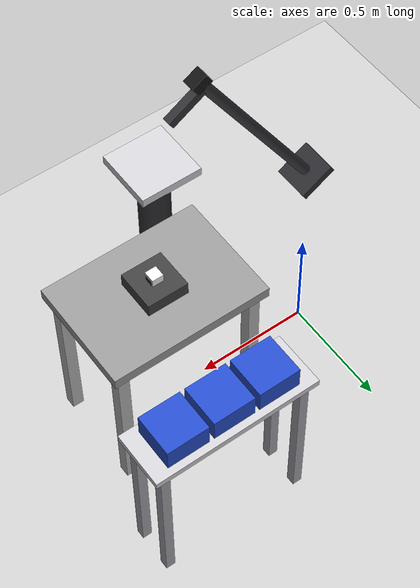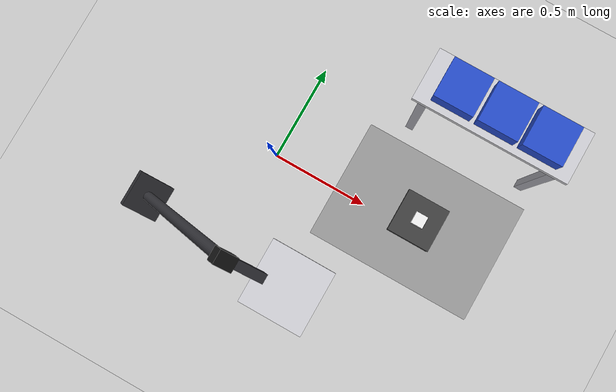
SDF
<?xml version="1.0" ?>
<sdf version="1.7">
  <world name="pick_scan_place">
    <plugin name="gazebo_ros_state" filename="libgazebo_ros_state.so"/>

    <include>
      <uri>model://ground_plane</uri>
    </include>
    <include>
      <uri>model://sun</uri>
    </include>

    <gravity>0 0 -9.81</gravity>

    <light name="cell_fill_light" type="point">
      <pose>0.45 0.0 2.0 0 0 0</pose>
      <diffuse>1 1 1 1</diffuse>
      <specular>0.2 0.2 0.2 1</specular>
      <attenuation>
        <range>15</range>
        <constant>0.8</constant>
        <linear>0.02</linear>
        <quadratic>0.001</quadratic>
      </attenuation>
      <cast_shadows>true</cast_shadows>
    </light>

    <include>
      <uri>model://work_table</uri>
      <name>pick_table</name>
      <pose>0.72 0.0 0 0 0 0</pose>
    </include>

    <model name="pick_station_fixture">
      <static>true</static>
      <pose>0.72 0.0 0.78 0 0 0</pose>
      <link name="fixture_link">
        <visual name="fixture_visual">
          <pose>0 0 0.03 0 0 0</pose>
          <geometry>
            <box>
              <size>0.18 0.18 0.06</size>
            </box>
          </geometry>
          <material>
            <ambient>0.25 0.25 0.25 1</ambient>
            <diffuse>0.25 0.25 0.25 1</diffuse>
          </material>
        </visual>
      </link>
    </model>

    <model name="pick_object_support">
      <static>true</static>
      <pose>0.72 0.0 0.765 0 0 0</pose>
      <link name="support_link">
        <collision name="support_collision">
          <geometry>
            <box>
              <size>0.08 0.08 0.02</size>
            </box>
          </geometry>
        </collision>
      </link>
    </model>

    <model name="scan_pedestal">
      <static>true</static>
      <pose>0.40 -0.48 0 0 0 0</pose>
      <link name="pedestal_link">
        <visual name="pedestal_column">
          <pose>0 0 0.40 0 0 0</pose>
          <geometry>
            <cylinder>
              <radius>0.07</radius>
              <length>0.80</length>
            </cylinder>
          </geometry>
          <material>
            <ambient>0.18 0.18 0.2 1</ambient>
            <diffuse>0.18 0.18 0.2 1</diffuse>
          </material>
        </visual>
        <visual name="pedestal_cap">
          <pose>0 0 0.81 0 0 0</pose>
          <geometry>
            <box>
              <size>0.28 0.28 0.04</size>
            </box>
          </geometry>
          <material>
            <ambient>0.82 0.82 0.84 1</ambient>
            <diffuse>0.82 0.82 0.84 1</diffuse>
          </material>
        </visual>
      </link>
    </model>

    <model name="scan_camera_rig">
      <static>true</static>
      <pose>0.17 -0.48 1.15 0 0.55 0</pose>
      <link name="scan_camera_link">
        <visual name="camera_pole">
          <pose>0 0 -0.55 0 0 0</pose>
          <geometry>
            <cylinder>
              <radius>0.025</radius>
              <length>1.10</length>
            </cylinder>
          </geometry>
          <material>
            <ambient>0.20 0.20 0.22 1</ambient>
            <diffuse>0.20 0.20 0.22 1</diffuse>
          </material>
        </visual>
        <visual name="camera_base">
          <pose>0 0 -1.11 0 0 0</pose>
          <geometry>
            <box>
              <size>0.18 0.18 0.04</size>
            </box>
          </geometry>
          <material>
            <ambient>0.18 0.18 0.2 1</ambient>
            <diffuse>0.18 0.18 0.2 1</diffuse>
          </material>
        </visual>
        <visual name="camera_boom">
          <pose>0.10 0 -0.05 0 0 0</pose>
          <geometry>
            <box>
              <size>0.20 0.04 0.04</size>
            </box>
          </geometry>
          <material>
            <ambient>0.20 0.20 0.22 1</ambient>
            <diffuse>0.20 0.20 0.22 1</diffuse>
          </material>
        </visual>
        <visual name="camera_body">
          <geometry>
            <box>
              <size>0.08 0.06 0.06</size>
            </box>
          </geometry>
          <material>
            <ambient>0.08 0.08 0.08 1</ambient>
            <diffuse>0.08 0.08 0.08 1</diffuse>
          </material>
        </visual>
        <sensor type="camera" name="scan_station_camera">
          <always_on>true</always_on>
          <visualize>false</visualize>
          <update_rate>15</update_rate>
          <camera>
            <horizontal_fov>1.047</horizontal_fov>
            <image>
              <width>640</width>
              <height>480</height>
              <format>R8G8B8</format>
            </image>
            <clip>
              <near>0.02</near>
              <far>3.0</far>
            </clip>
          </camera>
          <plugin name="scan_station_camera_plugin" filename="libgazebo_ros_camera.so">
            <camera_name>scan_station_camera</camera_name>
            <frame_name>scan_station_camera_link</frame_name>
          </plugin>
        </sensor>
      </link>
    </model>

    <model name="bin_rack">
      <static>true</static>
      <pose>0.82 0.55 0 0 0 0</pose>
      <link name="rack_link">
        <visual name="rack_top">
          <pose>0 0 0.735 0 0 0</pose>
          <geometry>
            <box>
              <size>0.72 0.24 0.03</size>
            </box>
          </geometry>
          <material>
            <ambient>0.82 0.82 0.84 1</ambient>
            <diffuse>0.82 0.82 0.84 1</diffuse>
          </material>
        </visual>
        <visual name="rack_leg_1">
          <pose>0.31 0.08 0.3675 0 0 0</pose>
          <geometry>
            <box>
              <size>0.04 0.04 0.735</size>
            </box>
          </geometry>
          <material>
            <ambient>0.65 0.65 0.68 1</ambient>
            <diffuse>0.65 0.65 0.68 1</diffuse>
          </material>
        </visual>
        <visual name="rack_leg_2">
          <pose>0.31 -0.08 0.3675 0 0 0</pose>
          <geometry>
            <box>
              <size>0.04 0.04 0.735</size>
            </box>
          </geometry>
          <material>
            <ambient>0.65 0.65 0.68 1</ambient>
            <diffuse>0.65 0.65 0.68 1</diffuse>
          </material>
        </visual>
        <visual name="rack_leg_3">
          <pose>-0.31 0.08 0.3675 0 0 0</pose>
          <geometry>
            <box>
              <size>0.04 0.04 0.735</size>
            </box>
          </geometry>
          <material>
            <ambient>0.65 0.65 0.68 1</ambient>
            <diffuse>0.65 0.65 0.68 1</diffuse>
          </material>
        </visual>
        <visual name="rack_leg_4">
          <pose>-0.31 -0.08 0.3675 0 0 0</pose>
          <geometry>
            <box>
              <size>0.04 0.04 0.735</size>
            </box>
          </geometry>
          <material>
            <ambient>0.65 0.65 0.68 1</ambient>
            <diffuse>0.65 0.65 0.68 1</diffuse>
          </material>
        </visual>
      </link>
    </model>

    <include>
      <uri>model://sorting_bin</uri>
      <name>bin_a</name>
      <pose>0.62 0.55 0.75 0 0 0</pose>
    </include>

    <model name="bin_a_support">
      <static>true</static>
      <pose>0.62 0.55 0.84 0 0 0</pose>
      <link name="support_link">
        <collision name="support_collision">
          <geometry>
            <box>
              <size>0.12 0.12 0.02</size>
            </box>
          </geometry>
        </collision>
      </link>
    </model>

    <include>
      <uri>model://sorting_bin</uri>
      <name>bin_b</name>
      <pose>0.82 0.55 0.75 0 0 0</pose>
    </include>

    <model name="bin_b_support">
      <static>true</static>
      <pose>0.82 0.55 0.84 0 0 0</pose>
      <link name="support_link">
        <collision name="support_collision">
          <geometry>
            <box>
              <size>0.12 0.12 0.02</size>
            </box>
          </geometry>
        </collision>
      </link>
    </model>

    <include>
      <uri>model://sorting_bin</uri>
      <name>bin_c</name>
      <pose>1.02 0.55 0.75 0 0 0</pose>
    </include>

    <model name="bin_c_support">
      <static>true</static>
      <pose>1.02 0.55 0.84 0 0 0</pose>
      <link name="support_link">
        <collision name="support_collision">
          <geometry>
            <box>
              <size>0.12 0.12 0.02</size>
            </box>
          </geometry>
        </collision>
      </link>
    </model>

    <include>
      <uri>model://qr_object</uri>
      <name>qr_object</name>
      <pose>0.72 0.0 0.825 0 0 0</pose>
    </include>
  </world>
</sdf>

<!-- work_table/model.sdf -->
<sdf version="1.7">
  <model name="work_table">
    <static>true</static>
    <link name="table_link">
      <visual name="top_visual">
        <pose>0 0 0.75 0 0 0</pose>
        <geometry>
          <box>
            <size>0.70 0.50 0.05</size>
          </box>
        </geometry>
        <material>
          <ambient>0.6 0.6 0.6 1</ambient>
          <diffuse>0.6 0.6 0.6 1</diffuse>
        </material>
      </visual>
      <visual name="leg_1_visual">
        <pose>0.30 0.20 0.375 0 0 0</pose>
        <geometry>
          <box>
            <size>0.05 0.05 0.75</size>
          </box>
        </geometry>
      </visual>
      <visual name="leg_2_visual">
        <pose>0.30 -0.20 0.375 0 0 0</pose>
        <geometry>
          <box>
            <size>0.05 0.05 0.75</size>
          </box>
        </geometry>
      </visual>
      <visual name="leg_3_visual">
        <pose>-0.30 0.20 0.375 0 0 0</pose>
        <geometry>
          <box>
            <size>0.05 0.05 0.75</size>
          </box>
        </geometry>
      </visual>
      <visual name="leg_4_visual">
        <pose>-0.30 -0.20 0.375 0 0 0</pose>
        <geometry>
          <box>
            <size>0.05 0.05 0.75</size>
          </box>
        </geometry>
      </visual>
    </link>
  </model>
</sdf>

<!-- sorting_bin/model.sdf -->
<sdf version="1.7">
  <model name="sorting_bin">
    <static>true</static>
    <link name="bin_link">
      <visual name="base_visual">
        <pose>0 0 0.05 0 0 0</pose>
        <geometry>
          <box>
            <size>0.18 0.18 0.10</size>
          </box>
        </geometry>
        <material>
          <ambient>0.15 0.3 0.8 1</ambient>
          <diffuse>0.15 0.3 0.8 1</diffuse>
        </material>
      </visual>
    </link>
  </model>
</sdf>

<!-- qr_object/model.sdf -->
<sdf version="1.7">
  <model name="qr_object">
    <static>false</static>
    <link name="object_link">
      <gravity>false</gravity>
      <inertial>
        <mass>0.25</mass>
        <inertia>
          <ixx>0.0005</ixx>
          <iyy>0.0005</iyy>
          <izz>0.0005</izz>
          <ixy>0.0</ixy>
          <ixz>0.0</ixz>
          <iyz>0.0</iyz>
        </inertia>
      </inertial>
      <visual name="body_visual">
        <geometry>
          <box>
            <size>0.05 0.05 0.10</size>
          </box>
        </geometry>
        <material>
          <ambient>0.95 0.95 0.95 1</ambient>
          <diffuse>0.95 0.95 0.95 1</diffuse>
        </material>
      </visual>
      <collision name="body_collision">
        <geometry>
          <box>
            <size>0.05 0.05 0.10</size>
          </box>
        </geometry>
      </collision>
      <visual name="label_panel">
        <pose>0.026 0 0 0 0 0</pose>
        <geometry>
          <box>
            <size>0.002 0.04 0.08</size>
          </box>
        </geometry>
        <material>
          <ambient>0.05 0.05 0.05 1</ambient>
          <diffuse>0.05 0.05 0.05 1</diffuse>
        </material>
      </visual>
    </link>
  </model>
</sdf>
